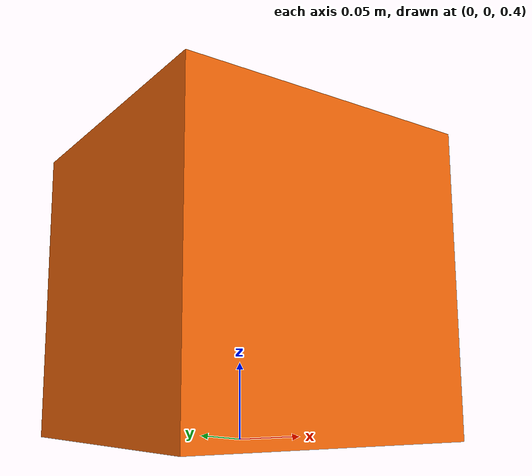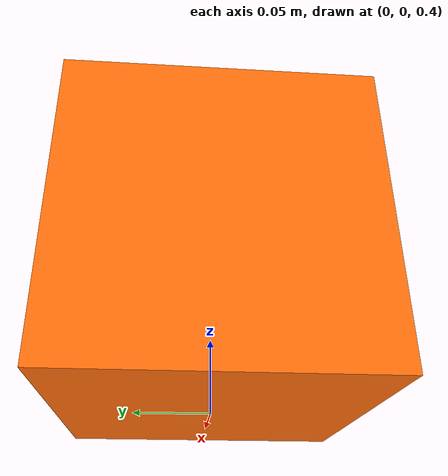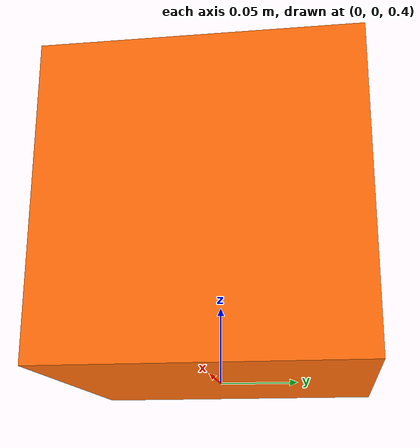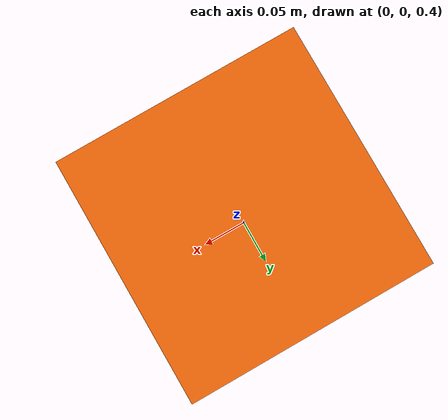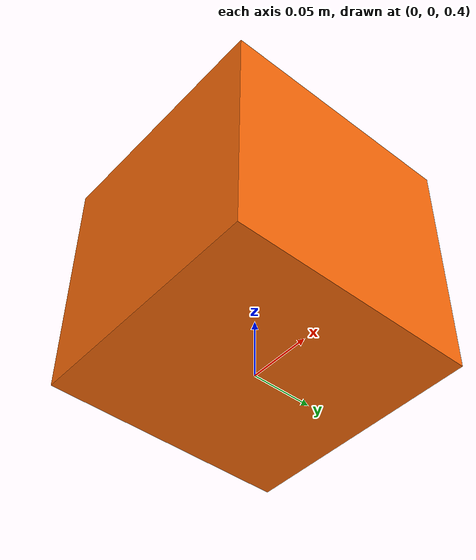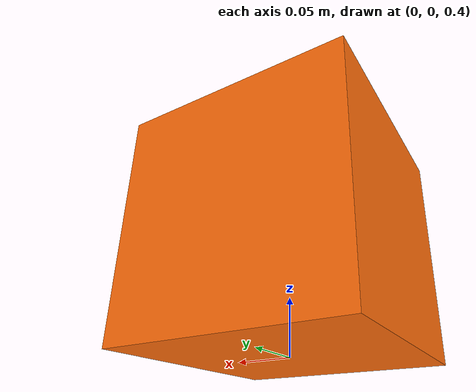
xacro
<?xml version="1.0"?>
<robot xmlns:xacro="http://wiki.ros.org/xacro" name="box">

  <link name="box_body">
    <visual>
      <origin xyz="0 0 0.5" rpy="0 0 0"/>
      <geometry>
        <box size="0.2 0.2 0.2"/>
      </geometry>
      <material name="orange"> <!-- rviz will read this color -->
        <color rgba="${255/255} ${108/255} ${10/255} 1.0"/>
      </material>
    </visual>
    <collision>
      <origin xyz="0 0 0.5" rpy="0 0 0"/>
      <geometry>
        <box size="0.2 0.2 0.2"/>
      </geometry>
    </collision>
    <inertial>
      <origin xyz="0 0 0" rpy="0 0 0"/>
      <mass value="8.2573504e-01"/>
      <inertia ixx="2.2124416e-03" ixy="-1.2294101e-05" ixz="3.4938785e-05"
               iyy="2.1193702e-03" iyz="-5.0120904e-06"
               izz="2.0064271e-03" />
    </inertial>
  </link>

  <gazebo reference="box_body">
    <material>Gazebo/Orange</material> <!-- gazebo will read this color -->
  </gazebo>

  <!-- plugin to exert a velocity in a link -->
  <gazebo>
    <plugin filename="libgazebo_ros_vel.so" name="gazebo_ros_vel">
      <bodyName>box_body</bodyName>
      <topicName>cmd_vel</topicName>
    </plugin>
  </gazebo>

</robot>
